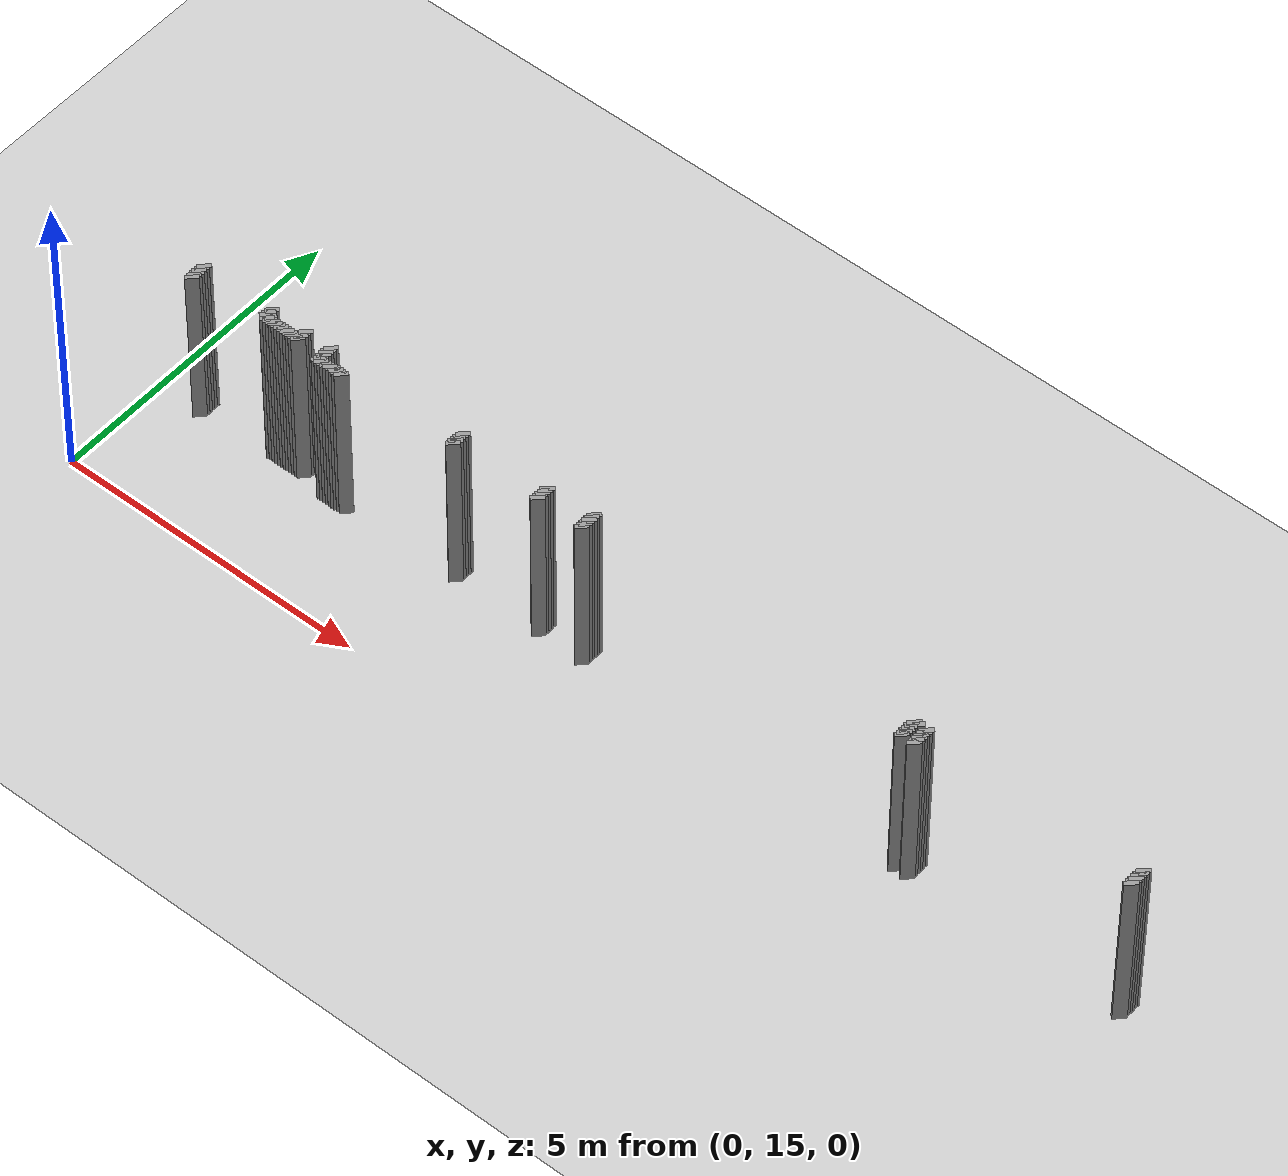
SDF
<sdf version="1.5">
 <world name="default">
  <include><uri>model://ground_plane</uri></include>
  <include><uri>model://sun</uri></include>
  <model name="grey_wall_373">
   <static>1</static>
   <link name="link">
    <pose>7.5 17.05  1.4 0 0 -0.7853981633974128</pose>
    <collision name="collision">
     <geometry><box><size>0.07071067811865325 .2  2.8</size></box></geometry>
    </collision>
    <visual name="visual">
     <cast_shadows>0</cast_shadows>
     <geometry><box><size>0.07071067811865325 .2  2.8</size></box></geometry>
     <material>
      <script>
       <uri>model://grey_wall/materials/scripts</uri>
       <uri>model://grey_wall/materials/textures</uri>
       <name>vrc/grey_wall</name>
      </script>
     </material>
    </visual>
   </link>
  </model>
  <model name="grey_wall_374">
   <static>1</static>
   <link name="link">
    <pose>12.8 17.05  1.4 0 0 -0.7853981633974128</pose>
    <collision name="collision">
     <geometry><box><size>0.07071067811865325 .2  2.8</size></box></geometry>
    </collision>
    <visual name="visual">
     <cast_shadows>0</cast_shadows>
     <geometry><box><size>0.07071067811865325 .2  2.8</size></box></geometry>
     <material>
      <script>
       <uri>model://grey_wall/materials/scripts</uri>
       <uri>model://grey_wall/materials/textures</uri>
       <name>vrc/grey_wall</name>
      </script>
     </material>
    </visual>
   </link>
  </model>
  <model name="grey_wall_375">
   <static>1</static>
   <link name="link">
    <pose>12.850000000000001 17.05  1.4 0 0 -0.7853981633974128</pose>
    <collision name="collision">
     <geometry><box><size>0.07071067811865325 .2  2.8</size></box></geometry>
    </collision>
    <visual name="visual">
     <cast_shadows>0</cast_shadows>
     <geometry><box><size>0.07071067811865325 .2  2.8</size></box></geometry>
     <material>
      <script>
       <uri>model://grey_wall/materials/scripts</uri>
       <uri>model://grey_wall/materials/textures</uri>
       <name>vrc/grey_wall</name>
      </script>
     </material>
    </visual>
   </link>
  </model>
  <model name="grey_wall_376">
   <static>1</static>
   <link name="link">
    <pose>13.0 17.05  1.4 0 0 -0.7853981633974128</pose>
    <collision name="collision">
     <geometry><box><size>0.07071067811865325 .2  2.8</size></box></geometry>
    </collision>
    <visual name="visual">
     <cast_shadows>0</cast_shadows>
     <geometry><box><size>0.07071067811865325 .2  2.8</size></box></geometry>
     <material>
      <script>
       <uri>model://grey_wall/materials/scripts</uri>
       <uri>model://grey_wall/materials/textures</uri>
       <name>vrc/grey_wall</name>
      </script>
     </material>
    </visual>
   </link>
  </model>
  <model name="grey_wall_377">
   <static>1</static>
   <link name="link">
    <pose>16.45 17.05  1.4 0 0 -0.7853981633974483</pose>
    <collision name="collision">
     <geometry><box><size>0.07071067811865074 .2  2.8</size></box></geometry>
    </collision>
    <visual name="visual">
     <cast_shadows>0</cast_shadows>
     <geometry><box><size>0.07071067811865074 .2  2.8</size></box></geometry>
     <material>
      <script>
       <uri>model://grey_wall/materials/scripts</uri>
       <uri>model://grey_wall/materials/textures</uri>
       <name>vrc/grey_wall</name>
      </script>
     </material>
    </visual>
   </link>
  </model>
  <model name="grey_wall_378">
   <static>1</static>
   <link name="link">
    <pose>0.75 17.0  1.4 0 0 -0.7853981633974194</pose>
    <collision name="collision">
     <geometry><box><size>0.07071067811865277 .2  2.8</size></box></geometry>
    </collision>
    <visual name="visual">
     <cast_shadows>0</cast_shadows>
     <geometry><box><size>0.07071067811865277 .2  2.8</size></box></geometry>
     <material>
      <script>
       <uri>model://grey_wall/materials/scripts</uri>
       <uri>model://grey_wall/materials/textures</uri>
       <name>vrc/grey_wall</name>
      </script>
     </material>
    </visual>
   </link>
  </model>
  <model name="grey_wall_379">
   <static>1</static>
   <link name="link">
    <pose>1.9500000000000002 17.0  1.4 0 0 -0.7853981633974216</pose>
    <collision name="collision">
     <geometry><box><size>0.07071067811865261 .2  2.8</size></box></geometry>
    </collision>
    <visual name="visual">
     <cast_shadows>0</cast_shadows>
     <geometry><box><size>0.07071067811865261 .2  2.8</size></box></geometry>
     <material>
      <script>
       <uri>model://grey_wall/materials/scripts</uri>
       <uri>model://grey_wall/materials/textures</uri>
       <name>vrc/grey_wall</name>
      </script>
     </material>
    </visual>
   </link>
  </model>
  <model name="grey_wall_380">
   <static>1</static>
   <link name="link">
    <pose>2.5500000000000003 17.0  1.4 0 0 -0.7853981633974216</pose>
    <collision name="collision">
     <geometry><box><size>0.07071067811865261 .2  2.8</size></box></geometry>
    </collision>
    <visual name="visual">
     <cast_shadows>0</cast_shadows>
     <geometry><box><size>0.07071067811865261 .2  2.8</size></box></geometry>
     <material>
      <script>
       <uri>model://grey_wall/materials/scripts</uri>
       <uri>model://grey_wall/materials/textures</uri>
       <name>vrc/grey_wall</name>
      </script>
     </material>
    </visual>
   </link>
  </model>
  <model name="grey_wall_381">
   <static>1</static>
   <link name="link">
    <pose>3.0 17.0  1.4 0 0 -0.7853981633974216</pose>
    <collision name="collision">
     <geometry><box><size>0.07071067811865261 .2  2.8</size></box></geometry>
    </collision>
    <visual name="visual">
     <cast_shadows>0</cast_shadows>
     <geometry><box><size>0.07071067811865261 .2  2.8</size></box></geometry>
     <material>
      <script>
       <uri>model://grey_wall/materials/scripts</uri>
       <uri>model://grey_wall/materials/textures</uri>
       <name>vrc/grey_wall</name>
      </script>
     </material>
    </visual>
   </link>
  </model>
  <model name="grey_wall_382">
   <static>1</static>
   <link name="link">
    <pose>5.300000000000001 17.0  1.4 0 0 -0.7853981633974128</pose>
    <collision name="collision">
     <geometry><box><size>0.07071067811865325 .2  2.8</size></box></geometry>
    </collision>
    <visual name="visual">
     <cast_shadows>0</cast_shadows>
     <geometry><box><size>0.07071067811865325 .2  2.8</size></box></geometry>
     <material>
      <script>
       <uri>model://grey_wall/materials/scripts</uri>
       <uri>model://grey_wall/materials/textures</uri>
       <name>vrc/grey_wall</name>
      </script>
     </material>
    </visual>
   </link>
  </model>
  <model name="grey_wall_383">
   <static>1</static>
   <link name="link">
    <pose>6.75 17.0  1.4 0 0 -0.7853981633974128</pose>
    <collision name="collision">
     <geometry><box><size>0.07071067811865325 .2  2.8</size></box></geometry>
    </collision>
    <visual name="visual">
     <cast_shadows>0</cast_shadows>
     <geometry><box><size>0.07071067811865325 .2  2.8</size></box></geometry>
     <material>
      <script>
       <uri>model://grey_wall/materials/scripts</uri>
       <uri>model://grey_wall/materials/textures</uri>
       <name>vrc/grey_wall</name>
      </script>
     </material>
    </visual>
   </link>
  </model>
  <model name="grey_wall_384">
   <static>1</static>
   <link name="link">
    <pose>7.5 17.0  1.4 0 0 -0.7853981633974128</pose>
    <collision name="collision">
     <geometry><box><size>0.07071067811865325 .2  2.8</size></box></geometry>
    </collision>
    <visual name="visual">
     <cast_shadows>0</cast_shadows>
     <geometry><box><size>0.07071067811865325 .2  2.8</size></box></geometry>
     <material>
      <script>
       <uri>model://grey_wall/materials/scripts</uri>
       <uri>model://grey_wall/materials/textures</uri>
       <name>vrc/grey_wall</name>
      </script>
     </material>
    </visual>
   </link>
  </model>
  <model name="grey_wall_385">
   <static>1</static>
   <link name="link">
    <pose>12.8 17.0  1.4 0 0 -0.7853981633974128</pose>
    <collision name="collision">
     <geometry><box><size>0.07071067811865325 .2  2.8</size></box></geometry>
    </collision>
    <visual name="visual">
     <cast_shadows>0</cast_shadows>
     <geometry><box><size>0.07071067811865325 .2  2.8</size></box></geometry>
     <material>
      <script>
       <uri>model://grey_wall/materials/scripts</uri>
       <uri>model://grey_wall/materials/textures</uri>
       <name>vrc/grey_wall</name>
      </script>
     </material>
    </visual>
   </link>
  </model>
  <model name="grey_wall_386">
   <static>1</static>
   <link name="link">
    <pose>13.0 17.0  1.4 0 0 -0.7853981633974128</pose>
    <collision name="collision">
     <geometry><box><size>0.07071067811865325 .2  2.8</size></box></geometry>
    </collision>
    <visual name="visual">
     <cast_shadows>0</cast_shadows>
     <geometry><box><size>0.07071067811865325 .2  2.8</size></box></geometry>
     <material>
      <script>
       <uri>model://grey_wall/materials/scripts</uri>
       <uri>model://grey_wall/materials/textures</uri>
       <name>vrc/grey_wall</name>
      </script>
     </material>
    </visual>
   </link>
  </model>
  <model name="grey_wall_387">
   <static>1</static>
   <link name="link">
    <pose>16.45 17.0  1.4 0 0 -0.7853981633974483</pose>
    <collision name="collision">
     <geometry><box><size>0.07071067811865074 .2  2.8</size></box></geometry>
    </collision>
    <visual name="visual">
     <cast_shadows>0</cast_shadows>
     <geometry><box><size>0.07071067811865074 .2  2.8</size></box></geometry>
     <material>
      <script>
       <uri>model://grey_wall/materials/scripts</uri>
       <uri>model://grey_wall/materials/textures</uri>
       <name>vrc/grey_wall</name>
      </script>
     </material>
    </visual>
   </link>
  </model>
  <model name="grey_wall_388">
   <static>1</static>
   <link name="link">
    <pose>0.75 16.95  1.4 0 0 -0.7853981633974194</pose>
    <collision name="collision">
     <geometry><box><size>0.07071067811865277 .2  2.8</size></box></geometry>
    </collision>
    <visual name="visual">
     <cast_shadows>0</cast_shadows>
     <geometry><box><size>0.07071067811865277 .2  2.8</size></box></geometry>
     <material>
      <script>
       <uri>model://grey_wall/materials/scripts</uri>
       <uri>model://grey_wall/materials/textures</uri>
       <name>vrc/grey_wall</name>
      </script>
     </material>
    </visual>
   </link>
  </model>
  <model name="grey_wall_389">
   <static>1</static>
   <link name="link">
    <pose>1.9500000000000002 16.95  1.4 0 0 -0.7853981633974216</pose>
    <collision name="collision">
     <geometry><box><size>0.07071067811865261 .2  2.8</size></box></geometry>
    </collision>
    <visual name="visual">
     <cast_shadows>0</cast_shadows>
     <geometry><box><size>0.07071067811865261 .2  2.8</size></box></geometry>
     <material>
      <script>
       <uri>model://grey_wall/materials/scripts</uri>
       <uri>model://grey_wall/materials/textures</uri>
       <name>vrc/grey_wall</name>
      </script>
     </material>
    </visual>
   </link>
  </model>
  <model name="grey_wall_390">
   <static>1</static>
   <link name="link">
    <pose>2.5500000000000003 16.95  1.4 0 0 -0.7853981633974216</pose>
    <collision name="collision">
     <geometry><box><size>0.07071067811865261 .2  2.8</size></box></geometry>
    </collision>
    <visual name="visual">
     <cast_shadows>0</cast_shadows>
     <geometry><box><size>0.07071067811865261 .2  2.8</size></box></geometry>
     <material>
      <script>
       <uri>model://grey_wall/materials/scripts</uri>
       <uri>model://grey_wall/materials/textures</uri>
       <name>vrc/grey_wall</name>
      </script>
     </material>
    </visual>
   </link>
  </model>
  <model name="grey_wall_391">
   <static>1</static>
   <link name="link">
    <pose>3.0 16.95  1.4 0 0 -0.7853981633974216</pose>
    <collision name="collision">
     <geometry><box><size>0.07071067811865261 .2  2.8</size></box></geometry>
    </collision>
    <visual name="visual">
     <cast_shadows>0</cast_shadows>
     <geometry><box><size>0.07071067811865261 .2  2.8</size></box></geometry>
     <material>
      <script>
       <uri>model://grey_wall/materials/scripts</uri>
       <uri>model://grey_wall/materials/textures</uri>
       <name>vrc/grey_wall</name>
      </script>
     </material>
    </visual>
   </link>
  </model>
  <model name="grey_wall_392">
   <static>1</static>
   <link name="link">
    <pose>5.300000000000001 16.95  1.4 0 0 -0.7853981633974128</pose>
    <collision name="collision">
     <geometry><box><size>0.07071067811865325 .2  2.8</size></box></geometry>
    </collision>
    <visual name="visual">
     <cast_shadows>0</cast_shadows>
     <geometry><box><size>0.07071067811865325 .2  2.8</size></box></geometry>
     <material>
      <script>
       <uri>model://grey_wall/materials/scripts</uri>
       <uri>model://grey_wall/materials/textures</uri>
       <name>vrc/grey_wall</name>
      </script>
     </material>
    </visual>
   </link>
  </model>
  <model name="grey_wall_393">
   <static>1</static>
   <link name="link">
    <pose>6.75 16.95  1.4 0 0 -0.7853981633974128</pose>
    <collision name="collision">
     <geometry><box><size>0.07071067811865325 .2  2.8</size></box></geometry>
    </collision>
    <visual name="visual">
     <cast_shadows>0</cast_shadows>
     <geometry><box><size>0.07071067811865325 .2  2.8</size></box></geometry>
     <material>
      <script>
       <uri>model://grey_wall/materials/scripts</uri>
       <uri>model://grey_wall/materials/textures</uri>
       <name>vrc/grey_wall</name>
      </script>
     </material>
    </visual>
   </link>
  </model>
  <model name="grey_wall_394">
   <static>1</static>
   <link name="link">
    <pose>7.5 16.95  1.4 0 0 -0.7853981633974128</pose>
    <collision name="collision">
     <geometry><box><size>0.07071067811865325 .2  2.8</size></box></geometry>
    </collision>
    <visual name="visual">
     <cast_shadows>0</cast_shadows>
     <geometry><box><size>0.07071067811865325 .2  2.8</size></box></geometry>
     <material>
      <script>
       <uri>model://grey_wall/materials/scripts</uri>
       <uri>model://grey_wall/materials/textures</uri>
       <name>vrc/grey_wall</name>
      </script>
     </material>
    </visual>
   </link>
  </model>
  <model name="grey_wall_395">
   <static>1</static>
   <link name="link">
    <pose>12.8 16.95  1.4 0 0 -0.7853981633974128</pose>
    <collision name="collision">
     <geometry><box><size>0.07071067811865325 .2  2.8</size></box></geometry>
    </collision>
    <visual name="visual">
     <cast_shadows>0</cast_shadows>
     <geometry><box><size>0.07071067811865325 .2  2.8</size></box></geometry>
     <material>
      <script>
       <uri>model://grey_wall/materials/scripts</uri>
       <uri>model://grey_wall/materials/textures</uri>
       <name>vrc/grey_wall</name>
      </script>
     </material>
    </visual>
   </link>
  </model>
  <model name="grey_wall_396">
   <static>1</static>
   <link name="link">
    <pose>13.0 16.95  1.4 0 0 -0.7853981633974128</pose>
    <collision name="collision">
     <geometry><box><size>0.07071067811865325 .2  2.8</size></box></geometry>
    </collision>
    <visual name="visual">
     <cast_shadows>0</cast_shadows>
     <geometry><box><size>0.07071067811865325 .2  2.8</size></box></geometry>
     <material>
      <script>
       <uri>model://grey_wall/materials/scripts</uri>
       <uri>model://grey_wall/materials/textures</uri>
       <name>vrc/grey_wall</name>
      </script>
     </material>
    </visual>
   </link>
  </model>
  <model name="grey_wall_397">
   <static>1</static>
   <link name="link">
    <pose>16.45 16.95  1.4 0 0 -0.7853981633974483</pose>
    <collision name="collision">
     <geometry><box><size>0.07071067811865074 .2  2.8</size></box></geometry>
    </collision>
    <visual name="visual">
     <cast_shadows>0</cast_shadows>
     <geometry><box><size>0.07071067811865074 .2  2.8</size></box></geometry>
     <material>
      <script>
       <uri>model://grey_wall/materials/scripts</uri>
       <uri>model://grey_wall/materials/textures</uri>
       <name>vrc/grey_wall</name>
      </script>
     </material>
    </visual>
   </link>
  </model>
  <model name="grey_wall_398">
   <static>1</static>
   <link name="link">
    <pose>0.75 16.900000000000002  1.4 0 0 -0.7853981633974194</pose>
    <collision name="collision">
     <geometry><box><size>0.07071067811865277 .2  2.8</size></box></geometry>
    </collision>
    <visual name="visual">
     <cast_shadows>0</cast_shadows>
     <geometry><box><size>0.07071067811865277 .2  2.8</size></box></geometry>
     <material>
      <script>
       <uri>model://grey_wall/materials/scripts</uri>
       <uri>model://grey_wall/materials/textures</uri>
       <name>vrc/grey_wall</name>
      </script>
     </material>
    </visual>
   </link>
  </model>
  <model name="grey_wall_399">
   <static>1</static>
   <link name="link">
    <pose>1.9500000000000002 16.900000000000002  1.4 0 0 -0.7853981633974216</pose>
    <collision name="collision">
     <geometry><box><size>0.07071067811865261 .2  2.8</size></box></geometry>
    </collision>
    <visual name="visual">
     <cast_shadows>0</cast_shadows>
     <geometry><box><size>0.07071067811865261 .2  2.8</size></box></geometry>
     <material>
      <script>
       <uri>model://grey_wall/materials/scripts</uri>
       <uri>model://grey_wall/materials/textures</uri>
       <name>vrc/grey_wall</name>
      </script>
     </material>
    </visual>
   </link>
  </model>
  <model name="grey_wall_400">
   <static>1</static>
   <link name="link">
    <pose>2.0 16.900000000000002  1.4 0 0 -0.7853981633974216</pose>
    <collision name="collision">
     <geometry><box><size>0.07071067811865261 .2  2.8</size></box></geometry>
    </collision>
    <visual name="visual">
     <cast_shadows>0</cast_shadows>
     <geometry><box><size>0.07071067811865261 .2  2.8</size></box></geometry>
     <material>
      <script>
       <uri>model://grey_wall/materials/scripts</uri>
       <uri>model://grey_wall/materials/textures</uri>
       <name>vrc/grey_wall</name>
      </script>
     </material>
    </visual>
   </link>
  </model>
  <model name="grey_wall_401">
   <static>1</static>
   <link name="link">
    <pose>2.5500000000000003 16.900000000000002  1.4 0 0 -0.7853981633974216</pose>
    <collision name="collision">
     <geometry><box><size>0.07071067811865261 .2  2.8</size></box></geometry>
    </collision>
    <visual name="visual">
     <cast_shadows>0</cast_shadows>
     <geometry><box><size>0.07071067811865261 .2  2.8</size></box></geometry>
     <material>
      <script>
       <uri>model://grey_wall/materials/scripts</uri>
       <uri>model://grey_wall/materials/textures</uri>
       <name>vrc/grey_wall</name>
      </script>
     </material>
    </visual>
   </link>
  </model>
  <model name="grey_wall_402">
   <static>1</static>
   <link name="link">
    <pose>3.0 16.900000000000002  1.4 0 0 -0.7853981633974216</pose>
    <collision name="collision">
     <geometry><box><size>0.07071067811865261 .2  2.8</size></box></geometry>
    </collision>
    <visual name="visual">
     <cast_shadows>0</cast_shadows>
     <geometry><box><size>0.07071067811865261 .2  2.8</size></box></geometry>
     <material>
      <script>
       <uri>model://grey_wall/materials/scripts</uri>
       <uri>model://grey_wall/materials/textures</uri>
       <name>vrc/grey_wall</name>
      </script>
     </material>
    </visual>
   </link>
  </model>
  <model name="grey_wall_403">
   <static>1</static>
   <link name="link">
    <pose>5.300000000000001 16.900000000000002  1.4 0 0 -0.7853981633974128</pose>
    <collision name="collision">
     <geometry><box><size>0.07071067811865325 .2  2.8</size></box></geometry>
    </collision>
    <visual name="visual">
     <cast_shadows>0</cast_shadows>
     <geometry><box><size>0.07071067811865325 .2  2.8</size></box></geometry>
     <material>
      <script>
       <uri>model://grey_wall/materials/scripts</uri>
       <uri>model://grey_wall/materials/textures</uri>
       <name>vrc/grey_wall</name>
      </script>
     </material>
    </visual>
   </link>
  </model>
  <model name="grey_wall_404">
   <static>1</static>
   <link name="link">
    <pose>6.75 16.900000000000002  1.4 0 0 -0.7853981633974128</pose>
    <collision name="collision">
     <geometry><box><size>0.07071067811865325 .2  2.8</size></box></geometry>
    </collision>
    <visual name="visual">
     <cast_shadows>0</cast_shadows>
     <geometry><box><size>0.07071067811865325 .2  2.8</size></box></geometry>
     <material>
      <script>
       <uri>model://grey_wall/materials/scripts</uri>
       <uri>model://grey_wall/materials/textures</uri>
       <name>vrc/grey_wall</name>
      </script>
     </material>
    </visual>
   </link>
  </model>
  <model name="grey_wall_405">
   <static>1</static>
   <link name="link">
    <pose>7.5 16.900000000000002  1.4 0 0 -0.7853981633974128</pose>
    <collision name="collision">
     <geometry><box><size>0.07071067811865325 .2  2.8</size></box></geometry>
    </collision>
    <visual name="visual">
     <cast_shadows>0</cast_shadows>
     <geometry><box><size>0.07071067811865325 .2  2.8</size></box></geometry>
     <material>
      <script>
       <uri>model://grey_wall/materials/scripts</uri>
       <uri>model://grey_wall/materials/textures</uri>
       <name>vrc/grey_wall</name>
      </script>
     </material>
    </visual>
   </link>
  </model>
  <model name="grey_wall_406">
   <static>1</static>
   <link name="link">
    <pose>12.8 16.900000000000002  1.4 0 0 -0.7853981633974128</pose>
    <collision name="collision">
     <geometry><box><size>0.07071067811865325 .2  2.8</size></box></geometry>
    </collision>
    <visual name="visual">
     <cast_shadows>0</cast_shadows>
     <geometry><box><size>0.07071067811865325 .2  2.8</size></box></geometry>
     <material>
      <script>
       <uri>model://grey_wall/materials/scripts</uri>
       <uri>model://grey_wall/materials/textures</uri>
       <name>vrc/grey_wall</name>
      </script>
     </material>
    </visual>
   </link>
  </model>
  <model name="grey_wall_407">
   <static>1</static>
   <link name="link">
    <pose>13.0 16.900000000000002  1.4 0 0 -0.7853981633974128</pose>
    <collision name="collision">
     <geometry><box><size>0.07071067811865325 .2  2.8</size></box></geometry>
    </collision>
    <visual name="visual">
     <cast_shadows>0</cast_shadows>
     <geometry><box><size>0.07071067811865325 .2  2.8</size></box></geometry>
     <material>
      <script>
       <uri>model://grey_wall/materials/scripts</uri>
       <uri>model://grey_wall/materials/textures</uri>
       <name>vrc/grey_wall</name>
      </script>
     </material>
    </visual>
   </link>
  </model>
  <model name="grey_wall_408">
   <static>1</static>
   <link name="link">
    <pose>16.45 16.900000000000002  1.4 0 0 -0.7853981633974483</pose>
    <collision name="collision">
     <geometry><box><size>0.07071067811865074 .2  2.8</size></box></geometry>
    </collision>
    <visual name="visual">
     <cast_shadows>0</cast_shadows>
     <geometry><box><size>0.07071067811865074 .2  2.8</size></box></geometry>
     <material>
      <script>
       <uri>model://grey_wall/materials/scripts</uri>
       <uri>model://grey_wall/materials/textures</uri>
       <name>vrc/grey_wall</name>
      </script>
     </material>
    </visual>
   </link>
  </model>
  <model name="grey_wall_409">
   <static>1</static>
   <link name="link">
    <pose>0.75 16.85  1.4 0 0 -0.7853981633974194</pose>
    <collision name="collision">
     <geometry><box><size>0.07071067811865277 .2  2.8</size></box></geometry>
    </collision>
    <visual name="visual">
     <cast_shadows>0</cast_shadows>
     <geometry><box><size>0.07071067811865277 .2  2.8</size></box></geometry>
     <material>
      <script>
       <uri>model://grey_wall/materials/scripts</uri>
       <uri>model://grey_wall/materials/textures</uri>
       <name>vrc/grey_wall</name>
      </script>
     </material>
    </visual>
   </link>
  </model>
  <model name="grey_wall_410">
   <static>1</static>
   <link name="link">
    <pose>2.0 16.85  1.4 0 0 -0.7853981633974216</pose>
    <collision name="collision">
     <geometry><box><size>0.07071067811865261 .2  2.8</size></box></geometry>
    </collision>
    <visual name="visual">
     <cast_shadows>0</cast_shadows>
     <geometry><box><size>0.07071067811865261 .2  2.8</size></box></geometry>
     <material>
      <script>
       <uri>model://grey_wall/materials/scripts</uri>
       <uri>model://grey_wall/materials/textures</uri>
       <name>vrc/grey_wall</name>
      </script>
     </material>
    </visual>
   </link>
  </model>
  <model name="grey_wall_411">
   <static>1</static>
   <link name="link">
    <pose>2.0500000000000003 16.85  1.4 0 0 -0.7853981633974216</pose>
    <collision name="collision">
     <geometry><box><size>0.07071067811865261 .2  2.8</size></box></geometry>
    </collision>
    <visual name="visual">
     <cast_shadows>0</cast_shadows>
     <geometry><box><size>0.07071067811865261 .2  2.8</size></box></geometry>
     <material>
      <script>
       <uri>model://grey_wall/materials/scripts</uri>
       <uri>model://grey_wall/materials/textures</uri>
       <name>vrc/grey_wall</name>
      </script>
     </material>
    </visual>
   </link>
  </model>
  <model name="grey_wall_412">
   <static>1</static>
   <link name="link">
    <pose>2.1 16.85  1.4 0 0 -0.7853981633974216</pose>
    <collision name="collision">
     <geometry><box><size>0.07071067811865261 .2  2.8</size></box></geometry>
    </collision>
    <visual name="visual">
     <cast_shadows>0</cast_shadows>
     <geometry><box><size>0.07071067811865261 .2  2.8</size></box></geometry>
     <material>
      <script>
       <uri>model://grey_wall/materials/scripts</uri>
       <uri>model://grey_wall/materials/textures</uri>
       <name>vrc/grey_wall</name>
      </script>
     </material>
    </visual>
   </link>
  </model>
  <model name="grey_wall_413">
   <static>1</static>
   <link name="link">
    <pose>2.15 16.85  1.4 0 0 -0.7853981633974216</pose>
    <collision name="collision">
     <geometry><box><size>0.07071067811865261 .2  2.8</size></box></geometry>
    </collision>
    <visual name="visual">
     <cast_shadows>0</cast_shadows>
     <geometry><box><size>0.07071067811865261 .2  2.8</size></box></geometry>
     <material>
      <script>
       <uri>model://grey_wall/materials/scripts</uri>
       <uri>model://grey_wall/materials/textures</uri>
       <name>vrc/grey_wall</name>
      </script>
     </material>
    </visual>
   </link>
  </model>
  <model name="grey_wall_414">
   <static>1</static>
   <link name="link">
    <pose>2.2 16.85  1.4 0 0 -0.7853981633974216</pose>
    <collision name="collision">
     <geometry><box><size>0.07071067811865261 .2  2.8</size></box></geometry>
    </collision>
    <visual name="visual">
     <cast_shadows>0</cast_shadows>
     <geometry><box><size>0.07071067811865261 .2  2.8</size></box></geometry>
     <material>
      <script>
       <uri>model://grey_wall/materials/scripts</uri>
       <uri>model://grey_wall/materials/textures</uri>
       <name>vrc/grey_wall</name>
      </script>
     </material>
    </visual>
   </link>
  </model>
  <model name="grey_wall_415">
   <static>1</static>
   <link name="link">
    <pose>2.25 16.85  1.4 0 0 -0.7853981633974216</pose>
    <collision name="collision">
     <geometry><box><size>0.07071067811865261 .2  2.8</size></box></geometry>
    </collision>
    <visual name="visual">
     <cast_shadows>0</cast_shadows>
     <geometry><box><size>0.07071067811865261 .2  2.8</size></box></geometry>
     <material>
      <script>
       <uri>model://grey_wall/materials/scripts</uri>
       <uri>model://grey_wall/materials/textures</uri>
       <name>vrc/grey_wall</name>
      </script>
     </material>
    </visual>
   </link>
  </model>
  <model name="grey_wall_416">
   <static>1</static>
   <link name="link">
    <pose>2.3000000000000003 16.85  1.4 0 0 -0.7853981633974216</pose>
    <collision name="collision">
     <geometry><box><size>0.07071067811865261 .2  2.8</size></box></geometry>
    </collision>
    <visual name="visual">
     <cast_shadows>0</cast_shadows>
     <geometry><box><size>0.07071067811865261 .2  2.8</size></box></geometry>
     <material>
      <script>
       <uri>model://grey_wall/materials/scripts</uri>
       <uri>model://grey_wall/materials/textures</uri>
       <name>vrc/grey_wall</name>
      </script>
     </material>
    </visual>
   </link>
  </model>
  <model name="grey_wall_417">
   <static>1</static>
   <link name="link">
    <pose>2.35 16.85  1.4 0 0 -0.7853981633974216</pose>
    <collision name="collision">
     <geometry><box><size>0.07071067811865261 .2  2.8</size></box></geometry>
    </collision>
    <visual name="visual">
     <cast_shadows>0</cast_shadows>
     <geometry><box><size>0.07071067811865261 .2  2.8</size></box></geometry>
     <material>
      <script>
       <uri>model://grey_wall/materials/scripts</uri>
       <uri>model://grey_wall/materials/textures</uri>
       <name>vrc/grey_wall</name>
      </script>
     </material>
    </visual>
   </link>
  </model>
  <model name="grey_wall_418">
   <static>1</static>
   <link name="link">
    <pose>2.4000000000000004 16.85  1.4 0 0 -0.7853981633974216</pose>
    <collision name="collision">
     <geometry><box><size>0.07071067811865261 .2  2.8</size></box></geometry>
    </collision>
    <visual name="visual">
     <cast_shadows>0</cast_shadows>
     <geometry><box><size>0.07071067811865261 .2  2.8</size></box></geometry>
     <material>
      <script>
       <uri>model://grey_wall/materials/scripts</uri>
       <uri>model://grey_wall/materials/textures</uri>
       <name>vrc/grey_wall</name>
      </script>
     </material>
    </visual>
   </link>
  </model>
  <model name="grey_wall_419">
   <static>1</static>
   <link name="link">
    <pose>2.45 16.85  1.4 0 0 -0.7853981633974216</pose>
    <collision name="collision">
     <geometry><box><size>0.07071067811865261 .2  2.8</size></box></geometry>
    </collision>
    <visual name="visual">
     <cast_shadows>0</cast_shadows>
     <geometry><box><size>0.07071067811865261 .2  2.8</size></box></geometry>
     <material>
      <script>
       <uri>model://grey_wall/materials/scripts</uri>
       <uri>model://grey_wall/materials/textures</uri>
       <name>vrc/grey_wall</name>
      </script>
     </material>
    </visual>
   </link>
  </model>
  <model name="grey_wall_420">
   <static>1</static>
   <link name="link">
    <pose>2.5 16.85  1.4 0 0 -0.7853981633974216</pose>
    <collision name="collision">
     <geometry><box><size>0.07071067811865261 .2  2.8</size></box></geometry>
    </collision>
    <visual name="visual">
     <cast_shadows>0</cast_shadows>
     <geometry><box><size>0.07071067811865261 .2  2.8</size></box></geometry>
     <material>
      <script>
       <uri>model://grey_wall/materials/scripts</uri>
       <uri>model://grey_wall/materials/textures</uri>
       <name>vrc/grey_wall</name>
      </script>
     </material>
    </visual>
   </link>
  </model>
  <model name="grey_wall_421">
   <static>1</static>
   <link name="link">
    <pose>2.5500000000000003 16.85  1.4 0 0 -0.7853981633974216</pose>
    <collision name="collision">
     <geometry><box><size>0.07071067811865261 .2  2.8</size></box></geometry>
    </collision>
    <visual name="visual">
     <cast_shadows>0</cast_shadows>
     <geometry><box><size>0.07071067811865261 .2  2.8</size></box></geometry>
     <material>
      <script>
       <uri>model://grey_wall/materials/scripts</uri>
       <uri>model://grey_wall/materials/textures</uri>
       <name>vrc/grey_wall</name>
      </script>
     </material>
    </visual>
   </link>
  </model>
  <model name="grey_wall_422">
   <static>1</static>
   <link name="link">
    <pose>3.0 16.85  1.4 0 0 -0.7853981633974216</pose>
    <collision name="collision">
     <geometry><box><size>0.07071067811865261 .2  2.8</size></box></geometry>
    </collision>
    <visual name="visual">
     <cast_shadows>0</cast_shadows>
     <geometry><box><size>0.07071067811865261 .2  2.8</size></box></geometry>
     <material>
      <script>
       <uri>model://grey_wall/materials/scripts</uri>
       <uri>model://grey_wall/materials/textures</uri>
       <name>vrc/grey_wall</name>
      </script>
     </material>
    </visual>
   </link>
  </model>
  <model name="grey_wall_423">
   <static>1</static>
   <link name="link">
    <pose>5.300000000000001 16.85  1.4 0 0 -0.7853981633974128</pose>
    <collision name="collision">
     <geometry><box><size>0.07071067811865325 .2  2.8</size></box></geometry>
    </collision>
    <visual name="visual">
     <cast_shadows>0</cast_shadows>
     <geometry><box><size>0.07071067811865325 .2  2.8</size></box></geometry>
     <material>
      <script>
       <uri>model://grey_wall/materials/scripts</uri>
       <uri>model://grey_wall/materials/textures</uri>
       <name>vrc/grey_wall</name>
      </script>
     </material>
    </visual>
   </link>
  </model>
  <model name="grey_wall_424">
   <static>1</static>
   <link name="link">
    <pose>6.75 16.85  1.4 0 0 -0.7853981633974128</pose>
    <collision name="collision">
     <geometry><box><size>0.07071067811865325 .2  2.8</size></box></geometry>
    </collision>
    <visual name="visual">
     <cast_shadows>0</cast_shadows>
     <geometry><box><size>0.07071067811865325 .2  2.8</size></box></geometry>
     <material>
      <script>
       <uri>model://grey_wall/materials/scripts</uri>
       <uri>model://grey_wall/materials/textures</uri>
       <name>vrc/grey_wall</name>
      </script>
     </material>
    </visual>
   </link>
  </model>
  <model name="grey_wall_425">
   <static>1</static>
   <link name="link">
    <pose>7.5 16.85  1.4 0 0 -0.7853981633974128</pose>
    <collision name="collision">
     <geometry><box><size>0.07071067811865325 .2  2.8</size></box></geometry>
    </collision>
    <visual name="visual">
     <cast_shadows>0</cast_shadows>
     <geometry><box><size>0.07071067811865325 .2  2.8</size></box></geometry>
     <material>
      <script>
       <uri>model://grey_wall/materials/scripts</uri>
       <uri>model://grey_wall/materials/textures</uri>
       <name>vrc/grey_wall</name>
      </script>
     </material>
    </visual>
   </link>
  </model>
  <model name="grey_wall_426">
   <static>1</static>
   <link name="link">
    <pose>12.8 16.85  1.4 0 0 -0.7853981633974128</pose>
    <collision name="collision">
     <geometry><box><size>0.07071067811865325 .2  2.8</size></box></geometry>
    </collision>
    <visual name="visual">
     <cast_shadows>0</cast_shadows>
     <geometry><box><size>0.07071067811865325 .2  2.8</size></box></geometry>
     <material>
      <script>
       <uri>model://grey_wall/materials/scripts</uri>
       <uri>model://grey_wall/materials/textures</uri>
       <name>vrc/grey_wall</name>
      </script>
     </material>
    </visual>
   </link>
  </model>
  <model name="grey_wall_427">
   <static>1</static>
   <link name="link">
    <pose>13.0 16.85  1.4 0 0 -0.7853981633974128</pose>
    <collision name="collision">
     <geometry><box><size>0.07071067811865325 .2  2.8</size></box></geometry>
    </collision>
    <visual name="visual">
     <cast_shadows>0</cast_shadows>
     <geometry><box><size>0.07071067811865325 .2  2.8</size></box></geometry>
     <material>
      <script>
       <uri>model://grey_wall/materials/scripts</uri>
       <uri>model://grey_wall/materials/textures</uri>
       <name>vrc/grey_wall</name>
      </script>
     </material>
    </visual>
   </link>
  </model>
  <model name="grey_wall_428">
   <static>1</static>
   <link name="link">
    <pose>16.45 16.85  1.4 0 0 -0.7853981633974483</pose>
    <collision name="collision">
     <geometry><box><size>0.07071067811865074 .2  2.8</size></box></geometry>
    </collision>
    <visual name="visual">
     <cast_shadows>0</cast_shadows>
     <geometry><box><size>0.07071067811865074 .2  2.8</size></box></geometry>
     <material>
      <script>
       <uri>model://grey_wall/materials/scripts</uri>
       <uri>model://grey_wall/materials/textures</uri>
       <name>vrc/grey_wall</name>
      </script>
     </material>
    </visual>
   </link>
  </model>
  <model name="grey_wall_429">
   <static>1</static>
   <link name="link">
    <pose>0.75 16.8  1.4 0 0 -0.7853981633974194</pose>
    <collision name="collision">
     <geometry><box><size>0.07071067811865277 .2  2.8</size></box></geometry>
    </collision>
    <visual name="visual">
     <cast_shadows>0</cast_shadows>
     <geometry><box><size>0.07071067811865277 .2  2.8</size></box></geometry>
     <material>
      <script>
       <uri>model://grey_wall/materials/scripts</uri>
       <uri>model://grey_wall/materials/textures</uri>
       <name>vrc/grey_wall</name>
      </script>
     </material>
    </visual>
   </link>
  </model>
  <model name="grey_wall_430">
   <static>1</static>
   <link name="link">
    <pose>3.0 16.8  1.4 0 0 -0.7853981633974216</pose>
    <collision name="collision">
     <geometry><box><size>0.07071067811865261 .2  2.8</size></box></geometry>
    </collision>
    <visual name="visual">
     <cast_shadows>0</cast_shadows>
     <geometry><box><size>0.07071067811865261 .2  2.8</size></box></geometry>
     <material>
      <script>
       <uri>model://grey_wall/materials/scripts</uri>
       <uri>model://grey_wall/materials/textures</uri>
       <name>vrc/grey_wall</name>
      </script>
     </material>
    </visual>
   </link>
  </model>
  <model name="grey_wall_431">
   <static>1</static>
   <link name="link">
    <pose>5.300000000000001 16.8  1.4 0 0 -0.7853981633974128</pose>
    <collision name="collision">
     <geometry><box><size>0.07071067811865325 .2  2.8</size></box></geometry>
    </collision>
    <visual name="visual">
     <cast_shadows>0</cast_shadows>
     <geometry><box><size>0.07071067811865325 .2  2.8</size></box></geometry>
     <material>
      <script>
       <uri>model://grey_wall/materials/scripts</uri>
       <uri>model://grey_wall/materials/textures</uri>
       <name>vrc/grey_wall</name>
      </script>
     </material>
    </visual>
   </link>
  </model>
  <model name="grey_wall_432">
   <static>1</static>
   <link name="link">
    <pose>6.75 16.8  1.4 0 0 -0.7853981633974128</pose>
    <collision name="collision">
     <geometry><box><size>0.07071067811865325 .2  2.8</size></box></geometry>
    </collision>
    <visual name="visual">
     <cast_shadows>0</cast_shadows>
     <geometry><box><size>0.07071067811865325 .2  2.8</size></box></geometry>
     <material>
      <script>
       <uri>model://grey_wall/materials/scripts</uri>
       <uri>model://grey_wall/materials/textures</uri>
       <name>vrc/grey_wall</name>
      </script>
     </material>
    </visual>
   </link>
  </model>
  <model name="grey_wall_433">
   <static>1</static>
   <link name="link">
    <pose>7.5 16.8  1.4 0 0 -0.7853981633974128</pose>
    <collision name="collision">
     <geometry><box><size>0.07071067811865325 .2  2.8</size></box></geometry>
    </collision>
    <visual name="visual">
     <cast_shadows>0</cast_shadows>
     <geometry><box><size>0.07071067811865325 .2  2.8</size></box></geometry>
     <material>
      <script>
       <uri>model://grey_wall/materials/scripts</uri>
       <uri>model://grey_wall/materials/textures</uri>
       <name>vrc/grey_wall</name>
      </script>
     </material>
    </visual>
   </link>
  </model>
  <model name="grey_wall_434">
   <static>1</static>
   <link name="link">
    <pose>12.8 16.8  1.4 0 0 -0.7853981633974128</pose>
    <collision name="collision">
     <geometry><box><size>0.07071067811865325 .2  2.8</size></box></geometry>
    </collision>
    <visual name="visual">
     <cast_shadows>0</cast_shadows>
     <geometry><box><size>0.07071067811865325 .2  2.8</size></box></geometry>
     <material>
      <script>
       <uri>model://grey_wall/materials/scripts</uri>
       <uri>model://grey_wall/materials/textures</uri>
       <name>vrc/grey_wall</name>
      </script>
     </material>
    </visual>
   </link>
  </model>
  <model name="grey_wall_435">
   <static>1</static>
   <link name="link">
    <pose>13.0 16.8  1.4 0 0 -0.7853981633974128</pose>
    <collision name="collision">
     <geometry><box><size>0.07071067811865325 .2  2.8</size></box></geometry>
    </collision>
    <visual name="visual">
     <cast_shadows>0</cast_shadows>
     <geometry><box><size>0.07071067811865325 .2  2.8</size></box></geometry>
     <material>
      <script>
       <uri>model://grey_wall/materials/scripts</uri>
       <uri>model://grey_wall/materials/textures</uri>
       <name>vrc/grey_wall</name>
      </script>
     </material>
    </visual>
   </link>
  </model>
  <model name="grey_wall_436">
   <static>1</static>
   <link name="link">
    <pose>16.45 16.8  1.4 0 0 -0.7853981633974483</pose>
    <collision name="collision">
     <geometry><box><size>0.07071067811865074 .2  2.8</size></box></geometry>
    </collision>
    <visual name="visual">
     <cast_shadows>0</cast_shadows>
     <geometry><box><size>0.07071067811865074 .2  2.8</size></box></geometry>
     <material>
      <script>
       <uri>model://grey_wall/materials/scripts</uri>
       <uri>model://grey_wall/materials/textures</uri>
       <name>vrc/grey_wall</name>
      </script>
     </material>
    </visual>
   </link>
  </model>
  <model name="grey_wall_437">
   <static>1</static>
   <link name="link">
    <pose>0.75 16.75  1.4 0 0 -0.7853981633974194</pose>
    <collision name="collision">
     <geometry><box><size>0.07071067811865277 .2  2.8</size></box></geometry>
    </collision>
    <visual name="visual">
     <cast_shadows>0</cast_shadows>
     <geometry><box><size>0.07071067811865277 .2  2.8</size></box></geometry>
     <material>
      <script>
       <uri>model://grey_wall/materials/scripts</uri>
       <uri>model://grey_wall/materials/textures</uri>
       <name>vrc/grey_wall</name>
      </script>
     </material>
    </visual>
   </link>
  </model>
  <model name="grey_wall_438">
   <static>1</static>
   <link name="link">
    <pose>3.0 16.75  1.4 0 0 -0.7853981633974216</pose>
    <collision name="collision">
     <geometry><box><size>0.07071067811865261 .2  2.8</size></box></geometry>
    </collision>
    <visual name="visual">
     <cast_shadows>0</cast_shadows>
     <geometry><box><size>0.07071067811865261 .2  2.8</size></box></geometry>
     <material>
      <script>
       <uri>model://grey_wall/materials/scripts</uri>
       <uri>model://grey_wall/materials/textures</uri>
       <name>vrc/grey_wall</name>
      </script>
     </material>
    </visual>
   </link>
  </model>
  <model name="grey_wall_439">
   <static>1</static>
   <link name="link">
    <pose>3.0500000000000003 16.75  1.4 0 0 -0.7853981633974216</pose>
    <collision name="collision">
     <geometry><box><size>0.07071067811865261 .2  2.8</size></box></geometry>
    </collision>
    <visual name="visual">
     <cast_shadows>0</cast_shadows>
     <geometry><box><size>0.07071067811865261 .2  2.8</size></box></geometry>
     <material>
      <script>
       <uri>model://grey_wall/materials/scripts</uri>
       <uri>model://grey_wall/materials/textures</uri>
       <name>vrc/grey_wall</name>
      </script>
     </material>
    </visual>
   </link>
  </model>
  <model name="grey_wall_440">
   <static>1</static>
   <link name="link">
    <pose>3.1 16.75  1.4 0 0 -0.7853981633974216</pose>
    <collision name="collision">
     <geometry><box><size>0.07071067811865261 .2  2.8</size></box></geometry>
    </collision>
    <visual name="visual">
     <cast_shadows>0</cast_shadows>
     <geometry><box><size>0.07071067811865261 .2  2.8</size></box></geometry>
     <material>
      <script>
       <uri>model://grey_wall/materials/scripts</uri>
       <uri>model://grey_wall/materials/textures</uri>
       <name>vrc/grey_wall</name>
      </script>
     </material>
    </visual>
   </link>
  </model>
  <model name="grey_wall_441">
   <static>1</static>
   <link name="link">
    <pose>3.1500000000000004 16.75  1.4 0 0 -0.7853981633974216</pose>
    <collision name="collision">
     <geometry><box><size>0.07071067811865261 .2  2.8</size></box></geometry>
    </collision>
    <visual name="visual">
     <cast_shadows>0</cast_shadows>
     <geometry><box><size>0.07071067811865261 .2  2.8</size></box></geometry>
     <material>
      <script>
       <uri>model://grey_wall/materials/scripts</uri>
       <uri>model://grey_wall/materials/textures</uri>
       <name>vrc/grey_wall</name>
      </script>
     </material>
    </visual>
   </link>
  </model>
  <model name="grey_wall_442">
   <static>1</static>
   <link name="link">
    <pose>3.2 16.75  1.4 0 0 -0.7853981633974216</pose>
    <collision name="collision">
     <geometry><box><size>0.07071067811865261 .2  2.8</size></box></geometry>
    </collision>
    <visual name="visual">
     <cast_shadows>0</cast_shadows>
     <geometry><box><size>0.07071067811865261 .2  2.8</size></box></geometry>
     <material>
      <script>
       <uri>model://grey_wall/materials/scripts</uri>
       <uri>model://grey_wall/materials/textures</uri>
       <name>vrc/grey_wall</name>
      </script>
     </material>
    </visual>
   </link>
  </model>
  <model name="grey_wall_443">
   <static>1</static>
   <link name="link">
    <pose>3.25 16.75  1.4 0 0 -0.7853981633974216</pose>
    <collision name="collision">
     <geometry><box><size>0.07071067811865261 .2  2.8</size></box></geometry>
    </collision>
    <visual name="visual">
     <cast_shadows>0</cast_shadows>
     <geometry><box><size>0.07071067811865261 .2  2.8</size></box></geometry>
     <material>
      <script>
       <uri>model://grey_wall/materials/scripts</uri>
       <uri>model://grey_wall/materials/textures</uri>
       <name>vrc/grey_wall</name>
      </script>
     </material>
    </visual>
   </link>
  </model>
  <model name="grey_wall_444">
   <static>1</static>
   <link name="link">
    <pose>3.3000000000000003 16.75  1.4 0 0 -0.7853981633974216</pose>
    <collision name="collision">
     <geometry><box><size>0.07071067811865261 .2  2.8</size></box></geometry>
    </collision>
    <visual name="visual">
     <cast_shadows>0</cast_shadows>
     <geometry><box><size>0.07071067811865261 .2  2.8</size></box></geometry>
     <material>
      <script>
       <uri>model://grey_wall/materials/scripts</uri>
       <uri>model://grey_wall/materials/textures</uri>
       <name>vrc/grey_wall</name>
      </script>
     </material>
    </visual>
   </link>
  </model>
  <model name="grey_wall_445">
   <static>1</static>
   <link name="link">
    <pose>3.35 16.75  1.4 0 0 -0.7853981633974216</pose>
    <collision name="collision">
     <geometry><box><size>0.07071067811865261 .2  2.8</size></box></geometry>
    </collision>
    <visual name="visual">
     <cast_shadows>0</cast_shadows>
     <geometry><box><size>0.07071067811865261 .2  2.8</size></box></geometry>
     <material>
      <script>
       <uri>model://grey_wall/materials/scripts</uri>
       <uri>model://grey_wall/materials/textures</uri>
       <name>vrc/grey_wall</name>
      </script>
     </material>
    </visual>
   </link>
  </model>
  <model name="grey_wall_446">
   <static>1</static>
   <link name="link">
    <pose>3.4000000000000004 16.75  1.4 0 0 -0.7853981633974216</pose>
    <collision name="collision">
     <geometry><box><size>0.07071067811865261 .2  2.8</size></box></geometry>
    </collision>
    <visual name="visual">
     <cast_shadows>0</cast_shadows>
     <geometry><box><size>0.07071067811865261 .2  2.8</size></box></geometry>
     <material>
      <script>
       <uri>model://grey_wall/materials/scripts</uri>
       <uri>model://grey_wall/materials/textures</uri>
       <name>vrc/grey_wall</name>
      </script>
     </material>
    </visual>
   </link>
  </model>
 </world>
</sdf>
